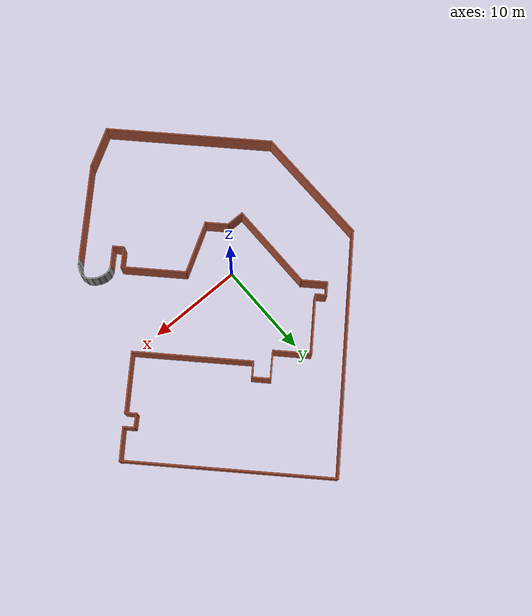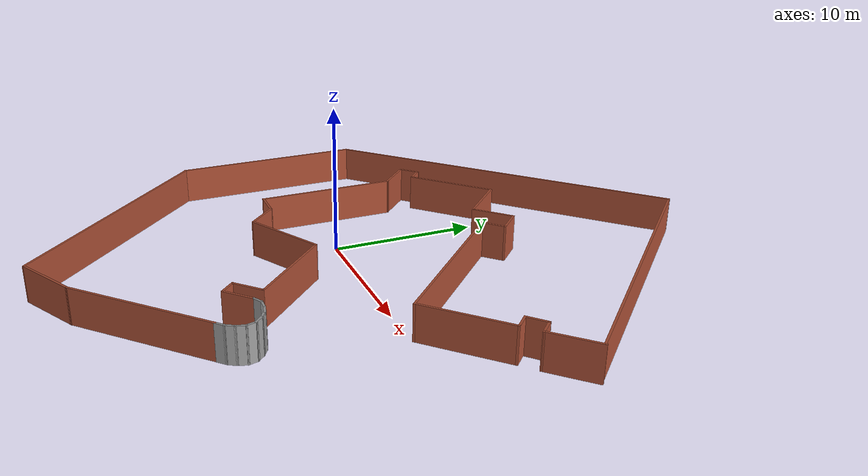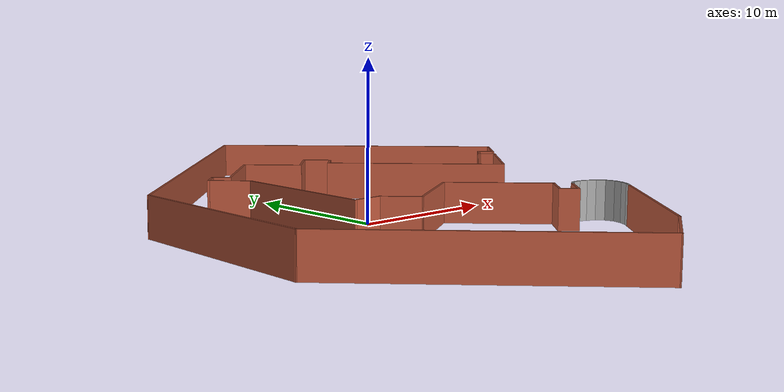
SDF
<?xml version='1.0'?>
<sdf version='1.6'>
  <model name='EngBusBldg'>
    <pose frame=''>4.35895 1.34164 0 0 -0 0</pose>
    <link name='Wall_17'>
      <collision name='Wall_17_Collision'>
        <geometry>
          <box>
            <size>12.25 0.15 2.5</size>
          </box>
        </geometry>
        <pose frame=''>0 0 1.25 0 -0 0</pose>
      </collision>
      <visual name='Wall_17_Visual'>
        <pose frame=''>0 0 1.25 0 -0 0</pose>
        <geometry>
          <box>
            <size>12.25 0.15 2.5</size>
          </box>
        </geometry>
        <material>
          <script>
            <uri>file://media/materials/scripts/gazebo.material</uri>
            <name>Gazebo/Bricks</name>
          </script>
          <ambient>1 1 1 1</ambient>
        </material>
        <meta>
          <layer>0</layer>
        </meta>
      </visual>
      <pose frame=''>4.46905 3.12636 0 0 0 -0.785398</pose>
    </link>
    <link name='Wall_19'>
      <collision name='Wall_19_Collision'>
        <geometry>
          <box>
            <size>1.75 0.15 2.5</size>
          </box>
        </geometry>
        <pose frame=''>0 0 1.25 0 -0 0</pose>
      </collision>
      <visual name='Wall_19_Visual'>
        <pose frame=''>0 0 1.25 0 -0 0</pose>
        <geometry>
          <box>
            <size>1.75 0.15 2.5</size>
          </box>
        </geometry>
        <material>
          <script>
            <uri>file://media/materials/scripts/gazebo.material</uri>
            <name>Gazebo/Bricks</name>
          </script>
          <ambient>1 1 1 1</ambient>
        </material>
        <meta>
          <layer>0</layer>
        </meta>
      </visual>
      <pose frame=''>0.756547 7.97036 0 0 -0 0.78584</pose>
    </link>
    <link name='Wall_20'>
      <collision name='Wall_20_Collision'>
        <geometry>
          <box>
            <size>2 0.15 2.5</size>
          </box>
        </geometry>
        <pose frame=''>0 0 1.25 0 -0 0</pose>
      </collision>
      <visual name='Wall_20_Visual'>
        <pose frame=''>0 0 1.25 0 -0 0</pose>
        <geometry>
          <box>
            <size>2 0.15 2.5</size>
          </box>
        </geometry>
        <material>
          <script>
            <uri>file://media/materials/scripts/gazebo.material</uri>
            <name>Gazebo/Bricks</name>
          </script>
          <ambient>1 1 1 1</ambient>
        </material>
        <meta>
          <layer>0</layer>
        </meta>
      </visual>
      <pose frame=''>0.668047 9.19036 0 0 -0 2.35619</pose>
    </link>
    <link name='Wall_21'>
      <collision name='Wall_21_Collision'>
        <geometry>
          <box>
            <size>3 0.15 2.5</size>
          </box>
        </geometry>
        <pose frame=''>0 0 1.25 0 -0 0</pose>
      </collision>
      <visual name='Wall_21_Visual'>
        <pose frame=''>0 0 1.25 0 -0 0</pose>
        <geometry>
          <box>
            <size>3 0.15 2.5</size>
          </box>
        </geometry>
        <material>
          <script>
            <uri>file://media/materials/scripts/gazebo.material</uri>
            <name>Gazebo/Bricks</name>
          </script>
          <ambient>1 1 1 1</ambient>
        </material>
        <meta>
          <layer>0</layer>
        </meta>
      </visual>
      <pose frame=''>-0.993453 8.83636 0 0 0 -2.35595</pose>
    </link>
    <link name='Wall_22'>
      <collision name='Wall_22_Collision'>
        <geometry>
          <box>
            <size>4 0.15 2.5</size>
          </box>
        </geometry>
        <pose frame=''>0 0 1.25 0 -0 0</pose>
      </collision>
      <visual name='Wall_22_Visual'>
        <pose frame=''>0 0 1.25 0 -0 0</pose>
        <geometry>
          <box>
            <size>4 0.15 2.5</size>
          </box>
        </geometry>
        <material>
          <script>
            <uri>file://media/materials/scripts/gazebo.material</uri>
            <name>Gazebo/Bricks</name>
          </script>
          <ambient>1 1 1 1</ambient>
        </material>
        <meta>
          <layer>0</layer>
        </meta>
      </visual>
      <pose frame=''>-3.36245 9.18986 0 0 -0 2.35619</pose>
    </link>
    <link name='Wall_24'>
      <collision name='Wall_24_Collision'>
        <geometry>
          <box>
            <size>6.25 0.15 2.5</size>
          </box>
        </geometry>
        <pose frame=''>0 0 1.25 0 -0 0</pose>
      </collision>
      <visual name='Wall_24_Visual'>
        <pose frame=''>0 0 1.25 0 -0 0</pose>
        <geometry>
          <box>
            <size>6.25 0.15 2.5</size>
          </box>
        </geometry>
        <material>
          <script>
            <uri>file://media/materials/scripts/gazebo.material</uri>
            <name>Gazebo/Bricks</name>
          </script>
          <ambient>1 1 1 1</ambient>
        </material>
        <meta>
          <layer>0</layer>
        </meta>
      </visual>
      <pose frame=''>-6.88045 8.39436 0 0 0 -2.35608</pose>
    </link>
    <link name='Wall_25'>
      <collision name='Wall_25_Collision'>
        <geometry>
          <box>
            <size>1.25 0.15 2.5</size>
          </box>
        </geometry>
        <pose frame=''>0 0 1.25 0 -0 0</pose>
      </collision>
      <visual name='Wall_25_Visual'>
        <pose frame=''>0 0 1.25 0 -0 0</pose>
        <geometry>
          <box>
            <size>1.25 0.15 2.5</size>
          </box>
        </geometry>
        <material>
          <script>
            <uri>file://media/materials/scripts/gazebo.material</uri>
            <name>Gazebo/Bricks</name>
          </script>
          <ambient>1 1 1 1</ambient>
        </material>
        <meta>
          <layer>0</layer>
        </meta>
      </visual>
      <pose frame=''>-9.42595 6.62636 0 0 -0 2.35619</pose>
    </link>
    <link name='Wall_26'>
      <collision name='Wall_26_Collision'>
        <geometry>
          <box>
            <size>1.5 0.15 2.5</size>
          </box>
        </geometry>
        <pose frame=''>0 0 1.25 0 -0 0</pose>
      </collision>
      <visual name='Wall_26_Visual'>
        <pose frame=''>0 0 1.25 0 -0 0</pose>
        <geometry>
          <box>
            <size>1.5 0.15 2.5</size>
          </box>
        </geometry>
        <material>
          <script>
            <uri>file://media/materials/scripts/gazebo.material</uri>
            <name>Gazebo/Bricks</name>
          </script>
          <ambient>1 1 1 1</ambient>
        </material>
        <meta>
          <layer>0</layer>
        </meta>
      </visual>
      <pose frame=''>-10.292 6.53836 0 0 0 -2.35619</pose>
    </link>
    <link name='Wall_27'>
      <collision name='Wall_27_Collision'>
        <geometry>
          <box>
            <size>2.75 0.15 2.5</size>
          </box>
        </geometry>
        <pose frame=''>0 0 1.25 0 -0 0</pose>
      </collision>
      <visual name='Wall_27_Visual'>
        <pose frame=''>0 0 1.25 0 -0 0</pose>
        <geometry>
          <box>
            <size>2.75 0.15 2.5</size>
          </box>
        </geometry>
        <material>
          <script>
            <uri>file://media/materials/scripts/gazebo.material</uri>
            <name>Gazebo/Bricks</name>
          </script>
          <ambient>1 1 1 1</ambient>
        </material>
        <meta>
          <layer>0</layer>
        </meta>
      </visual>
      <pose frame=''>-9.84995 5.14186 0 0 0 -0.78567</pose>
    </link>
    <link name='Wall_40'>
      <collision name='Wall_40_Collision'>
        <geometry>
          <box>
            <size>9.5 0.15 2.5</size>
          </box>
        </geometry>
        <pose frame=''>0 0 1.25 0 -0 0</pose>
      </collision>
      <visual name='Wall_40_Visual'>
        <pose frame=''>0 0 1.25 0 -0 0</pose>
        <geometry>
          <box>
            <size>9.5 0.15 2.5</size>
          </box>
        </geometry>
        <material>
          <script>
            <uri>file://media/materials/scripts/gazebo.material</uri>
            <name>Gazebo/Bricks</name>
          </script>
          <ambient>1 1 1 1</ambient>
        </material>
        <meta>
          <layer>0</layer>
        </meta>
      </visual>
      <pose frame=''>-8.93095 -0.452644 0 0 0 -1.5708</pose>
    </link>
    <link name='Wall_41'>
      <collision name='Wall_41_Collision'>
        <geometry>
          <box>
            <size>2 0.15 2.5</size>
          </box>
        </geometry>
        <pose frame=''>0 0 1.25 0 -0 0</pose>
      </collision>
      <visual name='Wall_41_Visual'>
        <pose frame=''>0 0 1.25 0 -0 0</pose>
        <geometry>
          <box>
            <size>2 0.15 2.5</size>
          </box>
        </geometry>
        <material>
          <script>
            <uri>file://media/materials/scripts/gazebo.material</uri>
            <name>Gazebo/Bricks</name>
          </script>
          <ambient>1 1 1 1</ambient>
        </material>
        <meta>
          <layer>0</layer>
        </meta>
      </visual>
      <pose frame=''>-8.00595 -5.12764 0 0 -0 0</pose>
    </link>
    <link name='Wall_42'>
      <collision name='Wall_42_Collision'>
        <geometry>
          <box>
            <size>2.5 0.15 2.5</size>
          </box>
        </geometry>
        <pose frame=''>0 0 1.25 0 -0 0</pose>
      </collision>
      <visual name='Wall_42_Visual'>
        <pose frame=''>0 0 1.25 0 -0 0</pose>
        <geometry>
          <box>
            <size>2.5 0.15 2.5</size>
          </box>
        </geometry>
        <material>
          <script>
            <uri>file://media/materials/scripts/gazebo.material</uri>
            <name>Gazebo/Bricks</name>
          </script>
          <ambient>1 1 1 1</ambient>
        </material>
        <meta>
          <layer>0</layer>
        </meta>
      </visual>
      <pose frame=''>-6.24995 -5.95814 0 0 0 -0.785097</pose>
    </link>
    <link name='Wall_43'>
      <collision name='Wall_43_Collision'>
        <geometry>
          <box>
            <size>5.75 0.15 2.5</size>
          </box>
        </geometry>
        <pose frame=''>0 0 1.25 0 -0 0</pose>
      </collision>
      <visual name='Wall_43_Visual'>
        <pose frame=''>0 0 1.25 0 -0 0</pose>
        <geometry>
          <box>
            <size>5.75 0.15 2.5</size>
          </box>
        </geometry>
        <material>
          <script>
            <uri>file://media/materials/scripts/gazebo.material</uri>
            <name>Gazebo/Bricks</name>
          </script>
          <ambient>1 1 1 1</ambient>
        </material>
        <meta>
          <layer>0</layer>
        </meta>
      </visual>
      <pose frame=''>-2.99445 -5.38864 0 0 -0 0.523665</pose>
    </link>
    <link name='Wall_45'>
      <collision name='Wall_45_Collision'>
        <geometry>
          <box>
            <size>6.75 0.15 2.5</size>
          </box>
        </geometry>
        <pose frame=''>0 0 1.25 0 -0 0</pose>
      </collision>
      <visual name='Wall_45_Visual'>
        <pose frame=''>0 0 1.25 0 -0 0</pose>
        <geometry>
          <box>
            <size>6.75 0.15 2.5</size>
          </box>
        </geometry>
        <material>
          <script>
            <uri>file://media/materials/scripts/gazebo.material</uri>
            <name>Gazebo/Bricks</name>
          </script>
          <ambient>1 1 1 1</ambient>
        </material>
        <meta>
          <layer>0</layer>
        </meta>
      </visual>
      <pose frame=''>1.76355 -6.32214 0 0 0 -0.785398</pose>
    </link>
    <link name='Wall_47'>
      <collision name='Wall_47_Collision'>
        <geometry>
          <box>
            <size>2.25 0.15 2.5</size>
          </box>
        </geometry>
        <pose frame=''>0 0 1.25 0 -0 0</pose>
      </collision>
      <visual name='Wall_47_Visual'>
        <pose frame=''>0 0 1.25 0 -0 0</pose>
        <geometry>
          <box>
            <size>2.25 0.15 2.5</size>
          </box>
        </geometry>
        <material>
          <script>
            <uri>file://media/materials/scripts/gazebo.material</uri>
            <name>Gazebo/Bricks</name>
          </script>
          <ambient>1 1 1 1</ambient>
        </material>
        <meta>
          <layer>0</layer>
        </meta>
      </visual>
      <pose frame=''>3.35455 -9.39814 0 0 0 -2.35619</pose>
    </link>
    <link name='Wall_48'>
      <collision name='Wall_48_Collision'>
        <geometry>
          <box>
            <size>1.25 0.15 2.5</size>
          </box>
        </geometry>
        <pose frame=''>0 0 1.25 0 -0 0</pose>
      </collision>
      <visual name='Wall_48_Visual'>
        <pose frame=''>0 0 1.25 0 -0 0</pose>
        <geometry>
          <box>
            <size>1.25 0.15 2.5</size>
          </box>
        </geometry>
        <material>
          <script>
            <uri>file://media/materials/scripts/gazebo.material</uri>
            <name>Gazebo/Bricks</name>
          </script>
          <ambient>1 1 1 1</ambient>
        </material>
        <meta>
          <layer>0</layer>
        </meta>
      </visual>
      <pose frame=''>3.00105 -10.5296 0 0 0 -0.785398</pose>
    </link>
    <link name='Wall_49'>
      <collision name='Wall_49_Collision'>
        <geometry>
          <box>
            <size>2.25 0.15 2.5</size>
          </box>
        </geometry>
        <pose frame=''>0 0 1.25 0 -0 0</pose>
      </collision>
      <visual name='Wall_49_Visual'>
        <pose frame=''>0 0 1.25 0 -0 0</pose>
        <geometry>
          <box>
            <size>2.25 0.15 2.5</size>
          </box>
        </geometry>
        <material>
          <script>
            <uri>file://media/materials/scripts/gazebo.material</uri>
            <name>Gazebo/Bricks</name>
          </script>
          <ambient>1 1 1 1</ambient>
        </material>
        <meta>
          <layer>0</layer>
        </meta>
      </visual>
      <pose frame=''>4.13255 -10.1761 0 0 -0 0.785398</pose>
    </link>
    <link name='Wall_51'>
      <collision name='Wall_51_Collision'>
        <geometry>
          <box>
            <size>0.75 0.15 2.5</size>
          </box>
        </geometry>
        <pose frame=''>0 0 1.25 0 -0 0</pose>
      </collision>
      <visual name='Wall_51_Visual'>
        <pose frame=''>0 0 1.25 0 -0 0</pose>
        <geometry>
          <box>
            <size>0.75 0.15 2.5</size>
          </box>
        </geometry>
        <material>
          <script>
            <uri>file://media/materials/scripts/gazebo.material</uri>
            <name>Gazebo/Grey</name>
          </script>
          <ambient>0 0 0 1</ambient>
        </material>
        <meta>
          <layer>0</layer>
        </meta>
      </visual>
      <pose frame=''>5.13496 -9.28375 0 0 -0 0.52313</pose>
    </link>
    <link name='Wall_53'>
      <collision name='Wall_53_Collision'>
        <geometry>
          <box>
            <size>0.75 0.15 2.5</size>
          </box>
        </geometry>
        <pose frame=''>0 0 1.25 0 -0 0</pose>
      </collision>
      <visual name='Wall_53_Visual'>
        <pose frame=''>0 0 1.25 0 -0 0</pose>
        <geometry>
          <box>
            <size>0.75 0.15 2.5</size>
          </box>
        </geometry>
        <material>
          <script>
            <uri>file://media/materials/scripts/gazebo.material</uri>
            <name>Gazebo/Grey</name>
          </script>
          <ambient>0 0 0 1</ambient>
        </material>
        <meta>
          <layer>0</layer>
        </meta>
      </visual>
      <pose frame=''>5.69487 -9.13385 0 0 -0 0</pose>
    </link>
    <link name='Wall_54'>
      <collision name='Wall_54_Collision'>
        <geometry>
          <box>
            <size>0.75 0.15 2.5</size>
          </box>
        </geometry>
        <pose frame=''>0 0 1.25 0 -0 0</pose>
      </collision>
      <visual name='Wall_54_Visual'>
        <pose frame=''>0 0 1.25 0 -0 0</pose>
        <geometry>
          <box>
            <size>0.75 0.15 2.5</size>
          </box>
        </geometry>
        <material>
          <script>
            <uri>file://media/materials/scripts/gazebo.material</uri>
            <name>Gazebo/Grey</name>
          </script>
          <ambient>0 0 0 1</ambient>
        </material>
        <meta>
          <layer>0</layer>
        </meta>
      </visual>
      <pose frame=''>6.28465 -9.21149 0 0 0 -0.261799</pose>
    </link>
    <link name='Wall_55'>
      <collision name='Wall_55_Collision'>
        <geometry>
          <box>
            <size>0.75 0.15 2.5</size>
          </box>
        </geometry>
        <pose frame=''>0 0 1.25 0 -0 0</pose>
      </collision>
      <visual name='Wall_55_Visual'>
        <pose frame=''>0 0 1.25 0 -0 0</pose>
        <geometry>
          <box>
            <size>0.75 0.15 2.5</size>
          </box>
        </geometry>
        <material>
          <script>
            <uri>file://media/materials/scripts/gazebo.material</uri>
            <name>Gazebo/Grey</name>
          </script>
          <ambient>0 0 0 1</ambient>
        </material>
        <meta>
          <layer>0</layer>
        </meta>
      </visual>
      <pose frame=''>6.83423 -9.43914 0 0 0 -0.523599</pose>
    </link>
    <link name='Wall_56'>
      <collision name='Wall_56_Collision'>
        <geometry>
          <box>
            <size>0.75 0.15 2.5</size>
          </box>
        </geometry>
        <pose frame=''>0 0 1.25 0 -0 0</pose>
      </collision>
      <visual name='Wall_56_Visual'>
        <pose frame=''>0 0 1.25 0 -0 0</pose>
        <geometry>
          <box>
            <size>0.75 0.15 2.5</size>
          </box>
        </geometry>
        <material>
          <script>
            <uri>file://media/materials/scripts/gazebo.material</uri>
            <name>Gazebo/Grey</name>
          </script>
          <ambient>0 0 0 1</ambient>
        </material>
        <meta>
          <layer>0</layer>
        </meta>
      </visual>
      <pose frame=''>7.30617 -9.80127 0 0 0 -0.785398</pose>
    </link>
    <link name='Wall_57'>
      <collision name='Wall_57_Collision'>
        <geometry>
          <box>
            <size>0.75 0.15 2.5</size>
          </box>
        </geometry>
        <pose frame=''>0 0 1.25 0 -0 0</pose>
      </collision>
      <visual name='Wall_57_Visual'>
        <pose frame=''>0 0 1.25 0 -0 0</pose>
        <geometry>
          <box>
            <size>0.75 0.15 2.5</size>
          </box>
        </geometry>
        <material>
          <script>
            <uri>file://media/materials/scripts/gazebo.material</uri>
            <name>Gazebo/Grey</name>
          </script>
          <ambient>0 0 0 1</ambient>
        </material>
        <meta>
          <layer>0</layer>
        </meta>
      </visual>
      <pose frame=''>7.59595 -10.3032 0 0 0 -1.309</pose>
    </link>
    <link name='Wall_59'>
      <collision name='Wall_59_Collision'>
        <geometry>
          <box>
            <size>0.75 0.15 2.5</size>
          </box>
        </geometry>
        <pose frame=''>0 0 1.25 0 -0 0</pose>
      </collision>
      <visual name='Wall_59_Visual'>
        <pose frame=''>0 0 1.25 0 -0 0</pose>
        <geometry>
          <box>
            <size>0.75 0.15 2.5</size>
          </box>
        </geometry>
        <material>
          <script>
            <uri>file://media/materials/scripts/gazebo.material</uri>
            <name>Gazebo/Grey</name>
          </script>
          <ambient>0 0 0 1</ambient>
        </material>
        <meta>
          <layer>0</layer>
        </meta>
      </visual>
      <pose frame=''>7.59595 -10.8827 0 0 0 -1.8326</pose>
    </link>
    <link name='Wall_60'>
      <collision name='Wall_60_Collision'>
        <geometry>
          <box>
            <size>0.75 0.15 2.5</size>
          </box>
        </geometry>
        <pose frame=''>0 0 1.25 0 -0 0</pose>
      </collision>
      <visual name='Wall_60_Visual'>
        <pose frame=''>0 0 1.25 0 -0 0</pose>
        <geometry>
          <box>
            <size>0.75 0.15 2.5</size>
          </box>
        </geometry>
        <material>
          <script>
            <uri>file://media/materials/scripts/gazebo.material</uri>
            <name>Gazebo/Grey</name>
          </script>
          <ambient>0 0 0 1</ambient>
        </material>
        <meta>
          <layer>0</layer>
        </meta>
      </visual>
      <pose frame=''>7.3683 -11.4323 0 0 0 -2.0944</pose>
    </link>
    <link name='Wall_62'>
      <collision name='Wall_62_Collision'>
        <geometry>
          <box>
            <size>0.75 0.15 2.5</size>
          </box>
        </geometry>
        <pose frame=''>0 0 1.25 0 -0 0</pose>
      </collision>
      <visual name='Wall_62_Visual'>
        <pose frame=''>0 0 1.25 0 -0 0</pose>
        <geometry>
          <box>
            <size>0.75 0.15 2.5</size>
          </box>
        </geometry>
        <material>
          <script>
            <uri>file://media/materials/scripts/gazebo.material</uri>
            <name>Gazebo/Grey</name>
          </script>
          <ambient>0 0 0 1</ambient>
        </material>
        <meta>
          <layer>0</layer>
        </meta>
      </visual>
      <pose frame=''>7.00618 -11.9044 0 0 0 -2.35589</pose>
    </link>
    <link name='Wall_63'>
      <collision name='Wall_63_Collision'>
        <geometry>
          <box>
            <size>10.25 0.15 2.5</size>
          </box>
        </geometry>
        <pose frame=''>0 0 1.25 0 -0 0</pose>
      </collision>
      <visual name='Wall_63_Visual'>
        <pose frame=''>0 0 1.25 0 -0 0</pose>
        <geometry>
          <box>
            <size>10.25 0.15 2.5</size>
          </box>
        </geometry>
        <material>
          <script>
            <uri>file://media/materials/scripts/gazebo.material</uri>
            <name>Gazebo/Bricks</name>
          </script>
          <ambient>1 1 1 1</ambient>
        </material>
        <meta>
          <layer>0</layer>
        </meta>
      </visual>
      <pose frame=''>3.22305 -15.6876 0 0 0 -2.35619</pose>
    </link>
    <link name='Wall_65'>
      <collision name='Wall_65_Collision'>
        <geometry>
          <box>
            <size>6.25 0.15 2.5</size>
          </box>
        </geometry>
        <pose frame=''>0 0 1.25 0 -0 0</pose>
      </collision>
      <visual name='Wall_65_Visual'>
        <pose frame=''>0 0 1.25 0 -0 0</pose>
        <geometry>
          <box>
            <size>6.25 0.15 2.5</size>
          </box>
        </geometry>
        <material>
          <script>
            <uri>file://media/materials/scripts/gazebo.material</uri>
            <name>Gazebo/Bricks</name>
          </script>
          <ambient>1 1 1 1</ambient>
        </material>
        <meta>
          <layer>0</layer>
        </meta>
      </visual>
      <pose frame=''>10.9035 1.00536 0 0 -0 0.785514</pose>
    </link>
    <link name='Wall_67'>
      <collision name='Wall_67_Collision'>
        <geometry>
          <box>
            <size>1.25 0.15 2.5</size>
          </box>
        </geometry>
        <pose frame=''>0 0 1.25 0 -0 0</pose>
      </collision>
      <visual name='Wall_67_Visual'>
        <pose frame=''>0 0 1.25 0 -0 0</pose>
        <geometry>
          <box>
            <size>1.25 0.15 2.5</size>
          </box>
        </geometry>
        <material>
          <script>
            <uri>file://media/materials/scripts/gazebo.material</uri>
            <name>Gazebo/Bricks</name>
          </script>
          <ambient>1 1 1 1</ambient>
        </material>
        <meta>
          <layer>0</layer>
        </meta>
      </visual>
      <pose frame=''>12.671 3.55086 0 0 -0 2.35684</pose>
    </link>
    <link name='Wall_68'>
      <collision name='Wall_68_Collision'>
        <geometry>
          <box>
            <size>1.53928 0.15 2.5</size>
          </box>
        </geometry>
        <pose frame=''>0 0 1.25 0 -0 0</pose>
      </collision>
      <visual name='Wall_68_Visual'>
        <pose frame=''>0 0 1.25 0 -0 0</pose>
        <geometry>
          <box>
            <size>1.53928 0.15 2.5</size>
          </box>
        </geometry>
        <material>
          <script>
            <uri>file://media/materials/scripts/gazebo.material</uri>
            <name>Gazebo/Bricks</name>
          </script>
          <ambient>0 0 0 1</ambient>
        </material>
        <meta>
          <layer>0</layer>
        </meta>
      </visual>
      <pose frame=''>12.7865 4.41686 0 0 -0 0.75791</pose>
    </link>
    <link name='Wall_69'>
      <collision name='Wall_69_Collision'>
        <geometry>
          <box>
            <size>1.24991 0.15 2.5</size>
          </box>
        </geometry>
        <pose frame=''>0 0 1.25 0 -0 0</pose>
      </collision>
      <visual name='Wall_69_Visual'>
        <pose frame=''>0 0 1.25 0 -0 0</pose>
        <geometry>
          <box>
            <size>1.24991 0.15 2.5</size>
          </box>
        </geometry>
        <material>
          <script>
            <uri>file://media/materials/scripts/gazebo.material</uri>
            <name>Gazebo/Bricks</name>
          </script>
          <ambient>0 0 0 1</ambient>
        </material>
        <meta>
          <layer>0</layer>
        </meta>
      </visual>
      <pose frame=''>13.6795 4.50536 0 0 0 -0.786041</pose>
    </link>
    <link name='Wall_70'>
      <collision name='Wall_70_Collision'>
        <geometry>
          <box>
            <size>3.4626 0.15 2.5</size>
          </box>
        </geometry>
        <pose frame=''>0 0 1.25 0 -0 0</pose>
      </collision>
      <visual name='Wall_70_Visual'>
        <pose frame=''>0 0 1.25 0 -0 0</pose>
        <geometry>
          <box>
            <size>3.4626 0.15 2.5</size>
          </box>
        </geometry>
        <material>
          <script>
            <uri>file://media/materials/scripts/gazebo.material</uri>
            <name>Gazebo/Bricks</name>
          </script>
          <ambient>0 0 0 1</ambient>
        </material>
        <meta>
          <layer>0</layer>
        </meta>
      </visual>
      <pose frame=''>15.2255 5.30086 0 0 -0 0.796926</pose>
    </link>
    <link name='Wall_73'>
      <collision name='Wall_73_Collision'>
        <geometry>
          <box>
            <size>4.5 0.15 2.5</size>
          </box>
        </geometry>
        <pose frame=''>0 0 1.25 0 -0 0</pose>
      </collision>
      <visual name='Wall_73_Visual'>
        <pose frame=''>0 0 1.25 0 -0 0</pose>
        <geometry>
          <box>
            <size>4.5 0.15 2.5</size>
          </box>
        </geometry>
        <material>
          <script>
            <uri>file://media/materials/scripts/gazebo.material</uri>
            <name>Gazebo/Bricks</name>
          </script>
          <ambient>0 0 0 1</ambient>
        </material>
        <meta>
          <layer>0</layer>
        </meta>
      </visual>
      <pose frame=''>-2.23145 -20.3461 0 0 0 -2.61797</pose>
    </link>
    <link name='Wall_75'>
      <collision name='Wall_75_Collision'>
        <geometry>
          <box>
            <size>17.5 0.15 2.5</size>
          </box>
        </geometry>
        <pose frame=''>0 0 1.25 0 -0 0</pose>
      </collision>
      <visual name='Wall_75_Visual'>
        <pose frame=''>0 0 1.25 0 -0 0</pose>
        <geometry>
          <box>
            <size>17.5 0.15 2.5</size>
          </box>
        </geometry>
        <material>
          <script>
            <uri>file://media/materials/scripts/gazebo.material</uri>
            <name>Gazebo/Bricks</name>
          </script>
          <ambient>1 1 1 1</ambient>
        </material>
        <meta>
          <layer>0</layer>
        </meta>
      </visual>
      <pose frame=''>-10.249 -15.2991 0 0 -0 2.35615</pose>
    </link>
    <link name='Wall_76'>
      <collision name='Wall_76_Collision'>
        <geometry>
          <box>
            <size>13 0.15 2.5</size>
          </box>
        </geometry>
        <pose frame=''>0 0 1.25 0 -0 0</pose>
      </collision>
      <visual name='Wall_76_Visual'>
        <pose frame=''>0 0 1.25 0 -0 0</pose>
        <geometry>
          <box>
            <size>13 0.15 2.5</size>
          </box>
        </geometry>
        <material>
          <script>
            <uri>file://media/materials/scripts/gazebo.material</uri>
            <name>Gazebo/Bricks</name>
          </script>
          <ambient>1 1 1 1</ambient>
        </material>
        <meta>
          <layer>0</layer>
        </meta>
      </visual>
      <pose frame=''>-16.383 -2.73964 0 0 -0 1.5708</pose>
    </link>
    <link name='Wall_77'>
      <collision name='Wall_77_Collision'>
        <geometry>
          <box>
            <size>25.25 0.15 2.5</size>
          </box>
        </geometry>
        <pose frame=''>0 0 1.25 0 -0 0</pose>
      </collision>
      <visual name='Wall_77_Visual'>
        <pose frame=''>0 0 1.25 0 -0 0</pose>
        <geometry>
          <box>
            <size>25.25 0.15 2.5</size>
          </box>
        </geometry>
        <material>
          <script>
            <uri>file://media/materials/scripts/gazebo.material</uri>
            <name>Gazebo/Bricks</name>
          </script>
          <ambient>1 1 1 1</ambient>
        </material>
        <meta>
          <layer>0</layer>
        </meta>
      </visual>
      <pose frame=''>-7.50895 12.5594 0 0 -0 0.785398</pose>
    </link>
    <link name='Wall_79'>
      <collision name='Wall_79_Collision'>
        <geometry>
          <box>
            <size>21.25 0.15 2.5</size>
          </box>
        </geometry>
        <pose frame=''>0 0 1.25 0 -0 0</pose>
      </collision>
      <visual name='Wall_79_Visual'>
        <pose frame=''>0 0 1.25 0 -0 0</pose>
        <geometry>
          <box>
            <size>21.25 0.15 2.5</size>
          </box>
        </geometry>
        <material>
          <script>
            <uri>file://media/materials/scripts/gazebo.material</uri>
            <name>Gazebo/Bricks</name>
          </script>
          <ambient>1 1 1 1</ambient>
        </material>
        <meta>
          <layer>0</layer>
        </meta>
      </visual>
      <pose frame=''>8.82505 13.9734 0 0 0 -0.785398</pose>
    </link>
    <static>1</static>
  </model>
</sdf>
